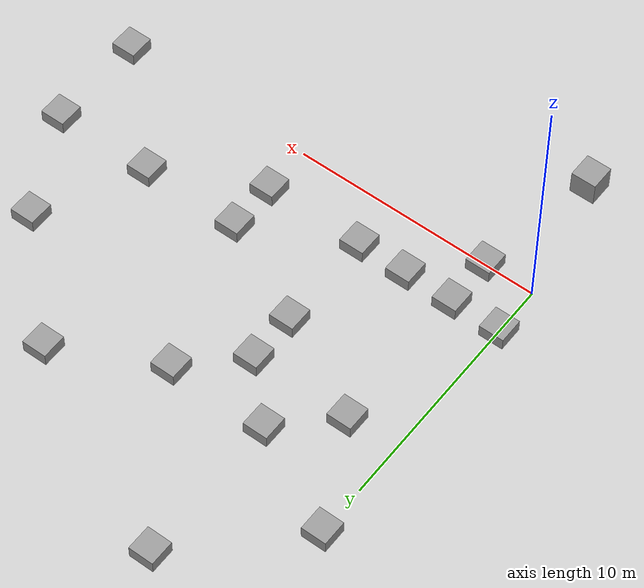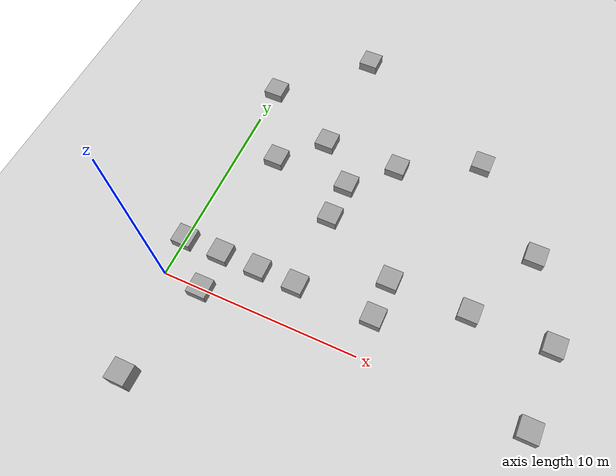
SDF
<sdf version="1.4">
 <world name="default">
  <light name="sun" type="directional">
   <pose>0 0 10 0 -0 0</pose>
   <diffuse>0.8 0.8 0.8 1</diffuse>
   <specular>0.2 0.2 0.2 1</specular>
   <attenuation>
    <range>1000</range>
    <constant>0.9</constant>
    <linear>0.01</linear>
    <quadratic>0.001</quadratic>
   </attenuation>
   <direction>-0.5 0.1 -0.9</direction>
  </light>
  <model name="ground_plane">
   <static>1</static>
   <link name="link">
    <collision name="collision">
     <geometry><plane><normal>0 0 1</normal><size>100 100</size></plane></geometry>
     <surface><friction><ode><mu>100</mu><mu2>50</mu2></ode></friction></surface>
    </collision>
    <visual name="visual">
     <cast_shadows>0</cast_shadows>
     <geometry><plane><normal>0 0 1</normal><size>100 100</size></plane></geometry>
     <material>
      <script><uri>file://media/materials/scripts/gazebo.material</uri><name>Gazebo/Grey</name></script>
     </material>
    </visual>
    <velocity_decay><linear>0</linear><angular>0</angular></velocity_decay>
   </link>
  </model>
  <physics type="ode">
   <max_step_size>0.001</max_step_size>
   <real_time_factor>1</real_time_factor>
   <real_time_update_rate>1000</real_time_update_rate>
   <gravity>0 0 -9.8</gravity>
  </physics>
  <scene><ambient>0.4 0.4 0.4 1</ambient><background>0.7 0.7 0.7 1</background><shadows>1</shadows></scene>
  <spherical_coordinates>
   <surface_model>EARTH_WGS84</surface_model>
   <latitude_deg>0</latitude_deg>
   <longitude_deg>0</longitude_deg>
   <elevation>0</elevation>
   <heading_deg>0</heading_deg>
  </spherical_coordinates>
  <model name="unit_box_0">
   <pose>2 8 0 0 0 0</pose>
   <link name="link">
    <inertial>
     <mass>1</mass>
     <inertia><ixx>1</ixx><ixy>0</ixy><ixz>0</ixz><iyy>1</iyy><iyz>0</iyz><izz>1</izz></inertia>
    </inertial>
    <collision name="collision"><geometry><box><size>0.5 0.5 0.5</size></box></geometry></collision>
    <visual name="visual">
     <geometry><box><size>1 1 1</size></box></geometry>
     <material>
      <script><uri>file://media/materials/scripts/gazebo.material</uri><name>Gazebo/Grey</name></script>
     </material>
    </visual>
    <velocity_decay><linear>0</linear><angular>0</angular></velocity_decay>
   </link>
   <static>0</static>
  </model>
  <model name="unit_box_1">
   <pose>1 -5 0.5 0 -0 0</pose>
   <link name="link">
    <inertial>
     <mass>1</mass>
     <inertia><ixx>1</ixx><ixy>0</ixy><ixz>0</ixz><iyy>1</iyy><iyz>0</iyz><izz>1</izz></inertia>
    </inertial>
    <collision name="collision"><geometry><box><size>0.5 0.5 0.5</size></box></geometry></collision>
    <visual name="visual">
     <geometry><box><size>1 1 1</size></box></geometry>
     <material>
      <script><uri>file://media/materials/scripts/gazebo.material</uri><name>Gazebo/Grey</name></script>
     </material>
    </visual>
    <velocity_decay><linear>0</linear><angular>0</angular></velocity_decay>
   </link>
   <static>0</static>
  </model>
  <model name="unit_box_2">
   <pose>8 10 0 0 0 0</pose>
   <link name="link">
    <inertial>
     <mass>1</mass>
     <inertia><ixx>1</ixx><ixy>0</ixy><ixz>0</ixz><iyy>1</iyy><iyz>0</iyz><izz>1</izz></inertia>
    </inertial>
    <collision name="collision"><geometry><box><size>0.5 0.5 0.5</size></box></geometry></collision>
    <visual name="visual">
     <geometry><box><size>1 1 1</size></box></geometry>
     <material>
      <script><uri>file://media/materials/scripts/gazebo.material</uri><name>Gazebo/Grey</name></script>
     </material>
    </visual>
    <velocity_decay><linear>0</linear><angular>0</angular></velocity_decay>
   </link>
   <static>0</static>
  </model>
  <model name="unit_box_3">
   <pose>10 4 0 0 0 0</pose>
   <link name="link">
    <inertial>
     <mass>1</mass>
     <inertia><ixx>1</ixx><ixy>0</ixy><ixz>0</ixz><iyy>1</iyy><iyz>0</iyz><izz>1</izz></inertia>
    </inertial>
    <collision name="collision"><geometry><box><size>0.5 0.5 0.5</size></box></geometry></collision>
    <visual name="visual">
     <geometry><box><size>1 1 1</size></box></geometry>
     <material>
      <script><uri>file://media/materials/scripts/gazebo.material</uri><name>Gazebo/Grey</name></script>
     </material>
    </visual>
    <velocity_decay><linear>0</linear><angular>0</angular></velocity_decay>
   </link>
   <static>0</static>
  </model>
  <model name="unit_box_4">
   <pose>18 4 0 0 0 0</pose>
   <link name="link">
    <inertial>
     <mass>1</mass>
     <inertia><ixx>1</ixx><ixy>0</ixy><ixz>0</ixz><iyy>1</iyy><iyz>0</iyz><izz>1</izz></inertia>
    </inertial>
    <collision name="collision"><geometry><box><size>0.5 0.5 0.5</size></box></geometry></collision>
    <visual name="visual">
     <geometry><box><size>1 1 1</size></box></geometry>
     <material>
      <script><uri>file://media/materials/scripts/gazebo.material</uri><name>Gazebo/Grey</name></script>
     </material>
    </visual>
    <velocity_decay><linear>0</linear><angular>0</angular></velocity_decay>
   </link>
   <static>0</static>
  </model>
  <model name="unit_box_5">
   <pose>18 0 0 0 0 0</pose>
   <link name="link">
    <inertial>
     <mass>1</mass>
     <inertia><ixx>1</ixx><ixy>0</ixy><ixz>0</ixz><iyy>1</iyy><iyz>0</iyz><izz>1</izz></inertia>
    </inertial>
    <collision name="collision"><geometry><box><size>0.5 0.5 0.5</size></box></geometry></collision>
    <visual name="visual">
     <geometry><box><size>1 1 1</size></box></geometry>
     <material>
      <script><uri>file://media/materials/scripts/gazebo.material</uri><name>Gazebo/Grey</name></script>
     </material>
    </visual>
    <velocity_decay><linear>0</linear><angular>0</angular></velocity_decay>
   </link>
   <static>0</static>
  </model>
  <model name="unit_box_6">
   <pose>4 10 0 0 0 0</pose>
   <link name="link">
    <inertial>
     <mass>1</mass>
     <inertia><ixx>1</ixx><ixy>0</ixy><ixz>0</ixz><iyy>1</iyy><iyz>0</iyz><izz>1</izz></inertia>
    </inertial>
    <collision name="collision"><geometry><box><size>0.5 0.5 0.5</size></box></geometry></collision>
    <visual name="visual">
     <geometry><box><size>1 1 1</size></box></geometry>
     <material>
      <script><uri>file://media/materials/scripts/gazebo.material</uri><name>Gazebo/Grey</name></script>
     </material>
    </visual>
    <velocity_decay><linear>0</linear><angular>0</angular></velocity_decay>
   </link>
   <static>0</static>
  </model>
  <model name="unit_box_7">
   <pose>0 2 0 0 0 0</pose>
   <link name="link">
    <inertial>
     <mass>1</mass>
     <inertia><ixx>1</ixx><ixy>0</ixy><ixz>0</ixz><iyy>1</iyy><iyz>0</iyz><izz>1</izz></inertia>
    </inertial>
    <collision name="collision"><geometry><box><size>0.5 0.5 0.5</size></box></geometry></collision>
    <visual name="visual">
     <geometry><box><size>1 1 1</size></box></geometry>
     <material>
      <script><uri>file://media/materials/scripts/gazebo.material</uri><name>Gazebo/Grey</name></script>
     </material>
    </visual>
    <velocity_decay><linear>0</linear><angular>0</angular></velocity_decay>
   </link>
   <static>0</static>
  </model>
  <model name="unit_box_8">
   <pose>6 6 0 0 0 0</pose>
   <link name="link">
    <inertial>
     <mass>1</mass>
     <inertia><ixx>1</ixx><ixy>0</ixy><ixz>0</ixz><iyy>1</iyy><iyz>0</iyz><izz>1</izz></inertia>
    </inertial>
    <collision name="collision"><geometry><box><size>0.5 0.5 0.5</size></box></geometry></collision>
    <visual name="visual">
     <geometry><box><size>1 1 1</size></box></geometry>
     <material>
      <script><uri>file://media/materials/scripts/gazebo.material</uri><name>Gazebo/Grey</name></script>
     </material>
    </visual>
    <velocity_decay><linear>0</linear><angular>0</angular></velocity_decay>
   </link>
   <static>0</static>
  </model>
  <model name="unit_box_9">
   <pose>14 4 0 0 0 0</pose>
   <link name="link">
    <inertial>
     <mass>1</mass>
     <inertia><ixx>1</ixx><ixy>0</ixy><ixz>0</ixz><iyy>1</iyy><iyz>0</iyz><izz>1</izz></inertia>
    </inertial>
    <collision name="collision"><geometry><box><size>0.5 0.5 0.5</size></box></geometry></collision>
    <visual name="visual">
     <geometry><box><size>1 1 1</size></box></geometry>
     <material>
      <script><uri>file://media/materials/scripts/gazebo.material</uri><name>Gazebo/Grey</name></script>
     </material>
    </visual>
    <velocity_decay><linear>0</linear><angular>0</angular></velocity_decay>
   </link>
   <static>0</static>
  </model>
  <model name="unit_box_10">
   <pose>6 8 0 0 0 0</pose>
   <link name="link">
    <inertial>
     <mass>1</mass>
     <inertia><ixx>1</ixx><ixy>0</ixy><ixz>0</ixz><iyy>1</iyy><iyz>0</iyz><izz>1</izz></inertia>
    </inertial>
    <collision name="collision"><geometry><box><size>0.5 0.5 0.5</size></box></geometry></collision>
    <visual name="visual">
     <geometry><box><size>1 1 1</size></box></geometry>
     <material>
      <script><uri>file://media/materials/scripts/gazebo.material</uri><name>Gazebo/Grey</name></script>
     </material>
    </visual>
    <velocity_decay><linear>0</linear><angular>0</angular></velocity_decay>
   </link>
   <static>0</static>
  </model>
  <model name="unit_box_11">
   <pose>2 0 0 0 0 0</pose>
   <link name="link">
    <inertial>
     <mass>1</mass>
     <inertia><ixx>1</ixx><ixy>0</ixy><ixz>0</ixz><iyy>1</iyy><iyz>0</iyz><izz>1</izz></inertia>
    </inertial>
    <collision name="collision"><geometry><box><size>0.5 0.5 0.5</size></box></geometry></collision>
    <visual name="visual">
     <geometry><box><size>1 1 1</size></box></geometry>
     <material>
      <script><uri>file://media/materials/scripts/gazebo.material</uri><name>Gazebo/Grey</name></script>
     </material>
    </visual>
    <velocity_decay><linear>0</linear><angular>0</angular></velocity_decay>
   </link>
   <static>0</static>
  </model>
  <model name="unit_box_12">
   <pose>6 2 0 0 0 0</pose>
   <link name="link">
    <inertial>
     <mass>1</mass>
     <inertia><ixx>1</ixx><ixy>0</ixy><ixz>0</ixz><iyy>1</iyy><iyz>0</iyz><izz>1</izz></inertia>
    </inertial>
    <collision name="collision"><geometry><box><size>0.5 0.5 0.5</size></box></geometry></collision>
    <visual name="visual">
     <geometry><box><size>1 1 1</size></box></geometry>
     <material>
      <script><uri>file://media/materials/scripts/gazebo.material</uri><name>Gazebo/Grey</name></script>
     </material>
    </visual>
    <velocity_decay><linear>0</linear><angular>0</angular></velocity_decay>
   </link>
   <static>0</static>
  </model>
  <model name="unit_box_13">
   <pose>0 12 0 0 0 0</pose>
   <link name="link">
    <inertial>
     <mass>1</mass>
     <inertia><ixx>1</ixx><ixy>0</ixy><ixz>0</ixz><iyy>1</iyy><iyz>0</iyz><izz>1</izz></inertia>
    </inertial>
    <collision name="collision"><geometry><box><size>0.5 0.5 0.5</size></box></geometry></collision>
    <visual name="visual">
     <geometry><box><size>1 1 1</size></box></geometry>
     <material>
      <script><uri>file://media/materials/scripts/gazebo.material</uri><name>Gazebo/Grey</name></script>
     </material>
    </visual>
    <velocity_decay><linear>0</linear><angular>0</angular></velocity_decay>
   </link>
   <static>0</static>
  </model>
  <model name="unit_box_14">
   <pose>4 16 0 0 0 0</pose>
   <link name="link">
    <inertial>
     <mass>1</mass>
     <inertia><ixx>1</ixx><ixy>0</ixy><ixz>0</ixz><iyy>1</iyy><iyz>0</iyz><izz>1</izz></inertia>
    </inertial>
    <collision name="collision"><geometry><box><size>0.5 0.5 0.5</size></box></geometry></collision>
    <visual name="visual">
     <geometry><box><size>1 1 1</size></box></geometry>
     <material>
      <script><uri>file://media/materials/scripts/gazebo.material</uri><name>Gazebo/Grey</name></script>
     </material>
    </visual>
    <velocity_decay><linear>0</linear><angular>0</angular></velocity_decay>
   </link>
   <static>0</static>
  </model>
  <model name="unit_box_15">
   <pose>4 2 0 0 0 0</pose>
   <link name="link">
    <inertial>
     <mass>1</mass>
     <inertia><ixx>1</ixx><ixy>0</ixy><ixz>0</ixz><iyy>1</iyy><iyz>0</iyz><izz>1</izz></inertia>
    </inertial>
    <collision name="collision"><geometry><box><size>0.5 0.5 0.5</size></box></geometry></collision>
    <visual name="visual">
     <geometry><box><size>1 1 1</size></box></geometry>
     <material>
      <script><uri>file://media/materials/scripts/gazebo.material</uri><name>Gazebo/Grey</name></script>
     </material>
    </visual>
    <velocity_decay><linear>0</linear><angular>0</angular></velocity_decay>
   </link>
   <static>0</static>
  </model>
  <model name="unit_box_16">
   <pose>10 2 0 0 0 0</pose>
   <link name="link">
    <inertial>
     <mass>1</mass>
     <inertia><ixx>1</ixx><ixy>0</ixy><ixz>0</ixz><iyy>1</iyy><iyz>0</iyz><izz>1</izz></inertia>
    </inertial>
    <collision name="collision"><geometry><box><size>0.5 0.5 0.5</size></box></geometry></collision>
    <visual name="visual">
     <geometry><box><size>1 1 1</size></box></geometry>
     <material>
      <script><uri>file://media/materials/scripts/gazebo.material</uri><name>Gazebo/Grey</name></script>
     </material>
    </visual>
    <velocity_decay><linear>0</linear><angular>0</angular></velocity_decay>
   </link>
   <static>0</static>
  </model>
  <model name="unit_box_17">
   <pose>16 8 0 0 0 0</pose>
   <link name="link">
    <inertial>
     <mass>1</mass>
     <inertia><ixx>1</ixx><ixy>0</ixy><ixz>0</ixz><iyy>1</iyy><iyz>0</iyz><izz>1</izz></inertia>
    </inertial>
    <collision name="collision"><geometry><box><size>0.5 0.5 0.5</size></box></geometry></collision>
    <visual name="visual">
     <geometry><box><size>1 1 1</size></box></geometry>
     <material>
      <script><uri>file://media/materials/scripts/gazebo.material</uri><name>Gazebo/Grey</name></script>
     </material>
    </visual>
    <velocity_decay><linear>0</linear><angular>0</angular></velocity_decay>
   </link>
   <static>0</static>
  </model>
  <model name="unit_box_18">
   <pose>12 12 0 0 0 0</pose>
   <link name="link">
    <inertial>
     <mass>1</mass>
     <inertia><ixx>1</ixx><ixy>0</ixy><ixz>0</ixz><iyy>1</iyy><iyz>0</iyz><izz>1</izz></inertia>
    </inertial>
    <collision name="collision"><geometry><box><size>0.5 0.5 0.5</size></box></geometry></collision>
    <visual name="visual">
     <geometry><box><size>1 1 1</size></box></geometry>
     <material>
      <script><uri>file://media/materials/scripts/gazebo.material</uri><name>Gazebo/Grey</name></script>
     </material>
    </visual>
    <velocity_decay><linear>0</linear><angular>0</angular></velocity_decay>
   </link>
   <static>0</static>
  </model>
  <model name="unit_box_19">
   <pose>2 2 0 0 0 0</pose>
   <link name="link">
    <inertial>
     <mass>1</mass>
     <inertia><ixx>1</ixx><ixy>0</ixy><ixz>0</ixz><iyy>1</iyy><iyz>0</iyz><izz>1</izz></inertia>
    </inertial>
    <collision name="collision"><geometry><box><size>0.5 0.5 0.5</size></box></geometry></collision>
    <visual name="visual">
     <geometry><box><size>1 1 1</size></box></geometry>
     <material>
      <script><uri>file://media/materials/scripts/gazebo.material</uri><name>Gazebo/Grey</name></script>
     </material>
    </visual>
    <velocity_decay><linear>0</linear><angular>0</angular></velocity_decay>
   </link>
   <static>0</static>
  </model>
 </world>
</sdf>
